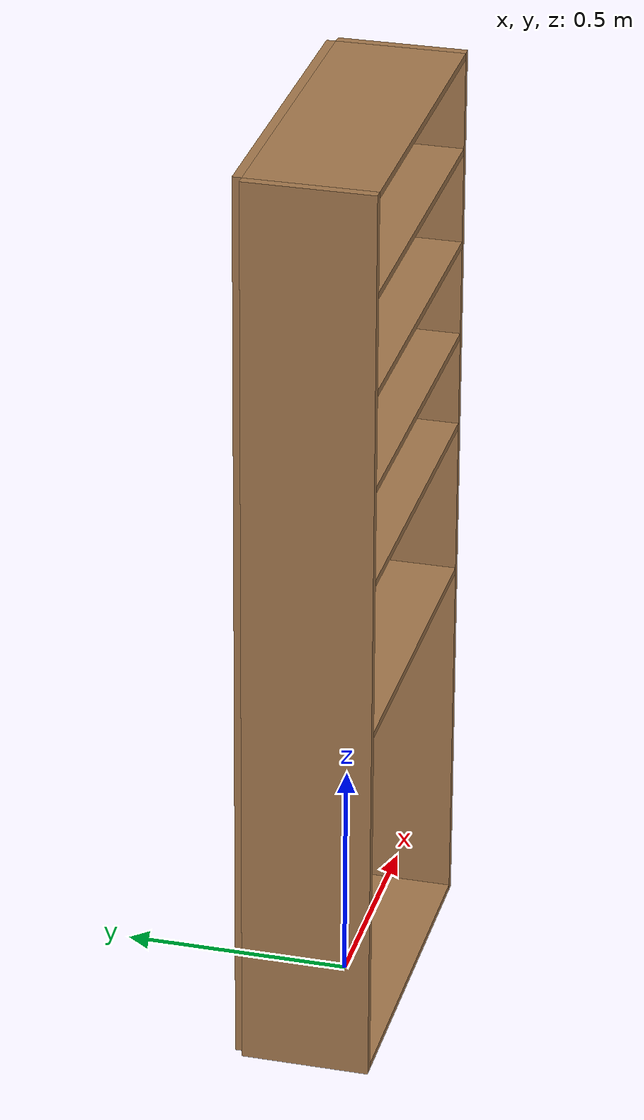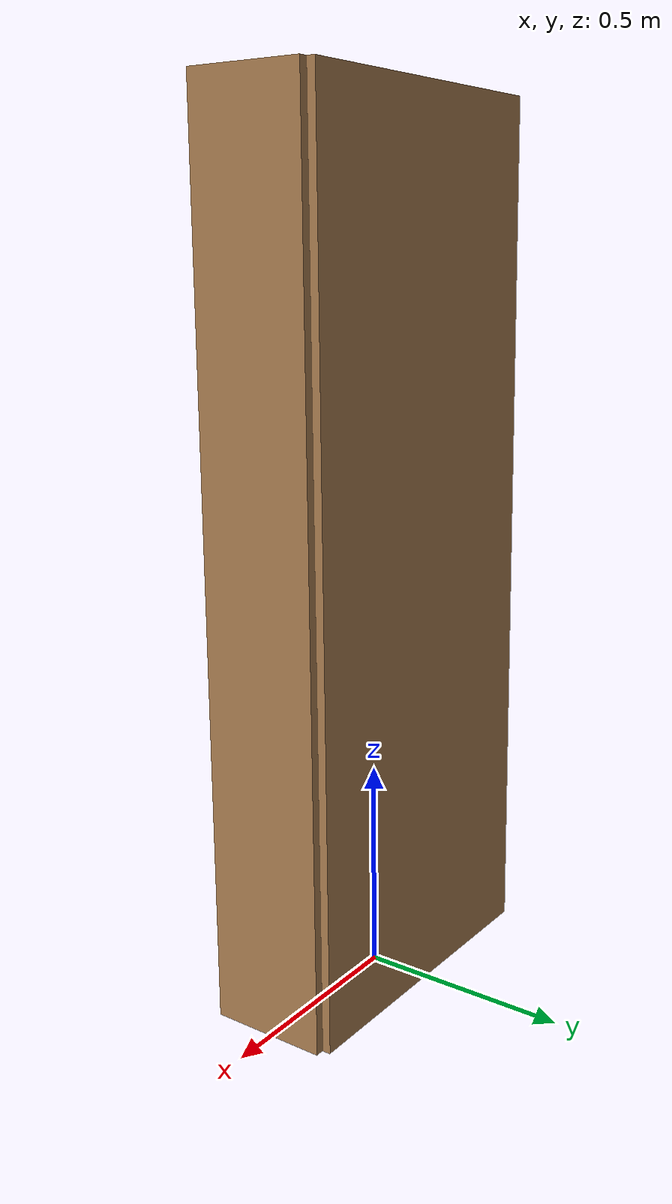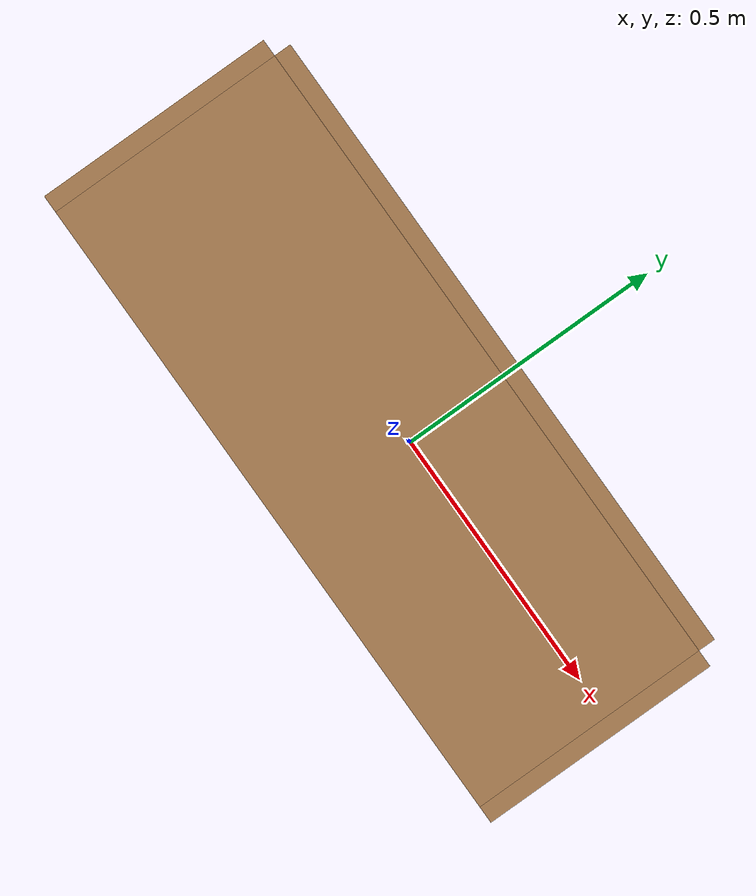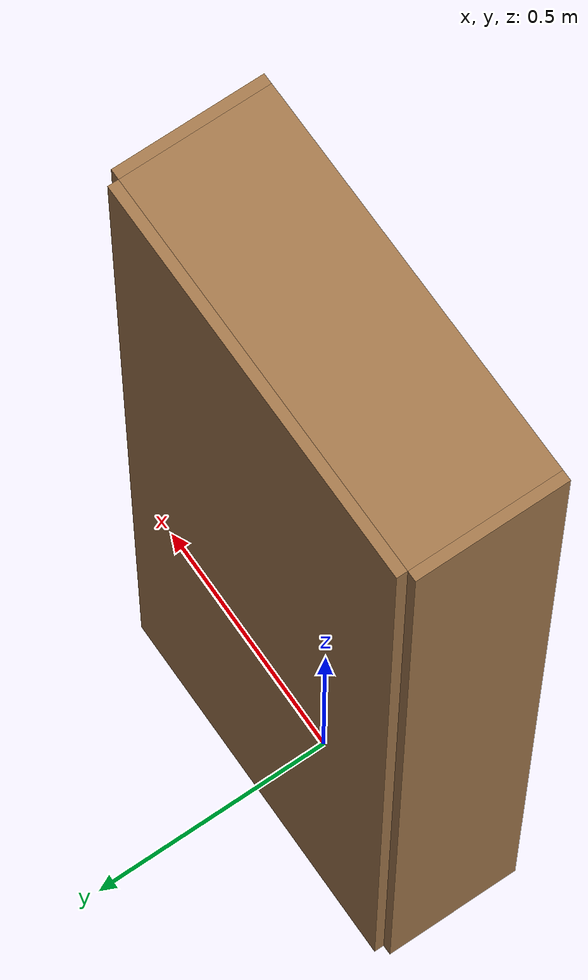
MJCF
<mujoco model="book_shelf">
  <!-- Adapted from ../large_shelf/model.xml; see ../../README.md for source attribution. -->
  <compiler angle="radian"/>
  <default>
    <geom type="box" friction="0.9 0.005 0.0001" group="3" rgba="0 0 0 0"/>
    <default class="shelf_visual">
      <geom contype="0" conaffinity="0" mass="0" group="1"
            friction="1 0.005 0.0001" rgba="0.64 0.47 0.30 1"/>
    </default>
  </default>
  <worldbody>
    <body name="base">
      <geom name="left_panel" pos="-0.39 -0.01 1.025" size="0.01 0.14 1.025"/>
      <geom name="right_panel" pos="0.39 -0.01 1.025" size="0.01 0.14 1.025"/>
      <geom name="back_panel" pos="0 0.14 1.025" size="0.38 0.01 1.025"/>
      <geom name="bottom" pos="0 -0.01 0.0075" size="0.38 0.14 0.0075"/>
      <geom name="top" pos="0 -0.01 2.0425" size="0.38 0.14 0.0075"/>
      <geom name="shelf_1" pos="0 -0.01 0.8275" size="0.38 0.14 0.0075"/>
      <geom name="shelf_2" pos="0 -0.01 1.1825" size="0.38 0.14 0.0075"/>
      <geom name="shelf_3" pos="0 -0.01 1.3975" size="0.38 0.14 0.0075"/>
      <geom name="shelf_4" pos="0 -0.01 1.6125" size="0.38 0.14 0.0075"/>
      <geom name="shelf_5" pos="0 -0.01 1.8275" size="0.38 0.14 0.0075"/>
      <geom name="left_panel_visual" class="shelf_visual" pos="-0.39 -0.01 1.025" size="0.01 0.14 1.025"/>
      <geom name="right_panel_visual" class="shelf_visual" pos="0.39 -0.01 1.025" size="0.01 0.14 1.025"/>
      <geom name="back_panel_visual" class="shelf_visual" pos="0 0.14 1.025" size="0.38 0.01 1.025"/>
      <geom name="bottom_visual" class="shelf_visual" pos="0 -0.01 0.0075" size="0.38 0.14 0.0075"/>
      <geom name="top_visual" class="shelf_visual" pos="0 -0.01 2.0425" size="0.38 0.14 0.0075"/>
      <geom name="shelf_1_visual" class="shelf_visual" pos="0 -0.01 0.8275" size="0.38 0.14 0.0075"/>
      <geom name="shelf_2_visual" class="shelf_visual" pos="0 -0.01 1.1825" size="0.38 0.14 0.0075"/>
      <geom name="shelf_3_visual" class="shelf_visual" pos="0 -0.01 1.3975" size="0.38 0.14 0.0075"/>
      <geom name="shelf_4_visual" class="shelf_visual" pos="0 -0.01 1.6125" size="0.38 0.14 0.0075"/>
      <geom name="shelf_5_visual" class="shelf_visual" pos="0 -0.01 1.8275" size="0.38 0.14 0.0075"/>
    </body>
  </worldbody>
</mujoco>
